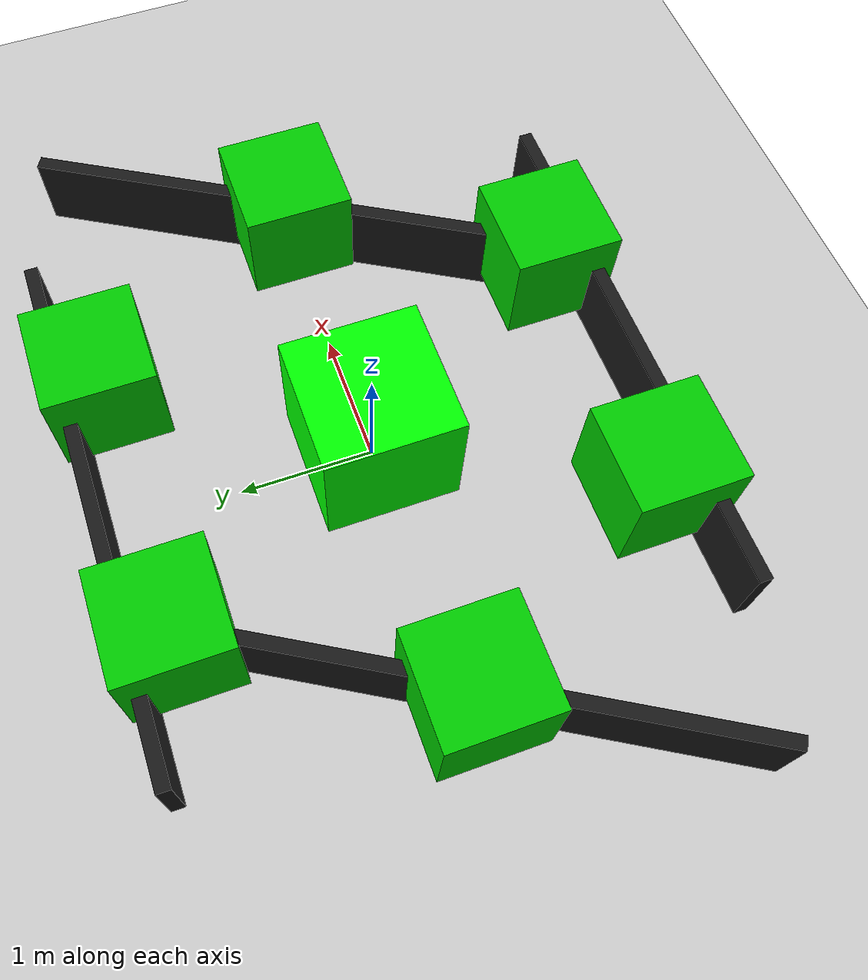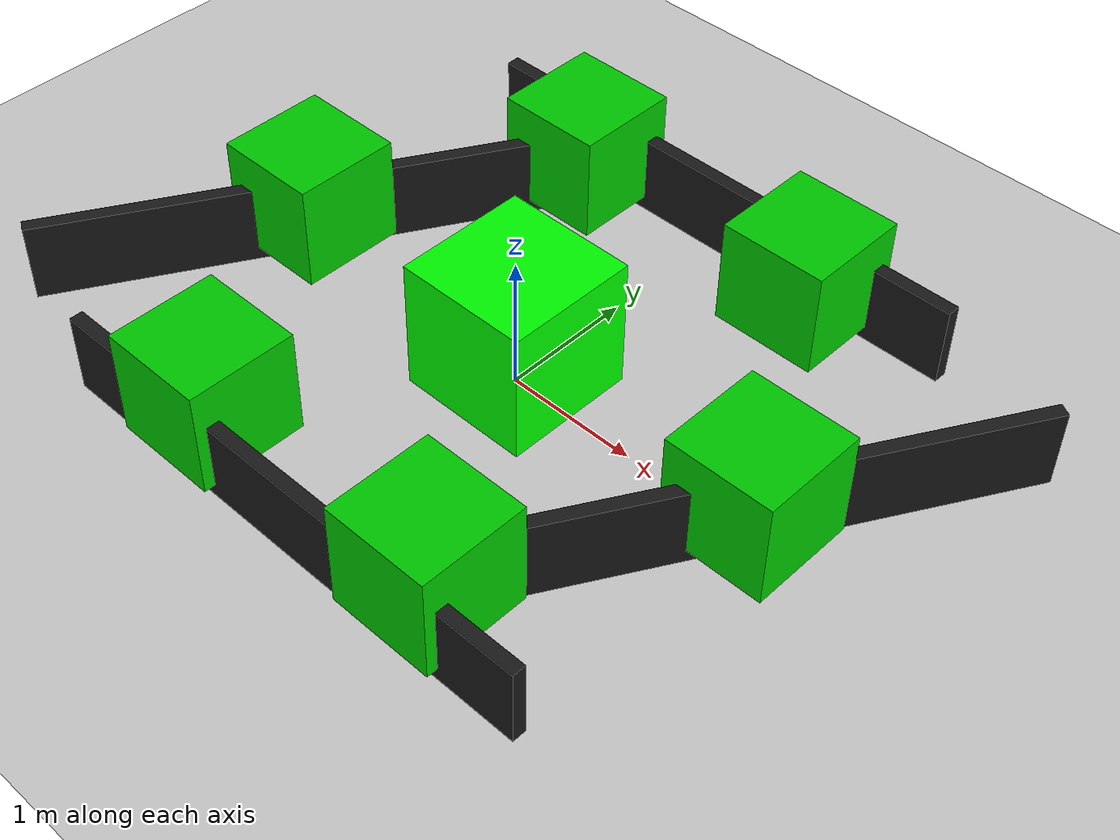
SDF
<!--world模型大体上由我描述，ai生成，后面有一些微调 -->

<?xml version="1.0"?>
<sdf version="1.6">
  <world name="hexagon_world">
    <physics name="default_physics" default="0" type="ode">
      <real_time_update_rate>1000.0</real_time_update_rate>
      <max_step_size>0.001</max_step_size>
      <real_time_factor>1.0</real_time_factor>
    </physics>

    <scene>
      <ambient>0.4 0.4 0.4 1</ambient>
      <background>0.7 0.7 0.7 1</background>
      <shadows>false</shadows>
    </scene>

    <!-- 内置光源 -->
    <light type="directional" name="sun">
      <cast_shadows>false</cast_shadows>
      <pose>0 0 10 0 0 0</pose>
      <diffuse>0.8 0.8 0.8 1</diffuse>
      <specular>0.2 0.2 0.2 1</specular>
      <attenuation>
        <range>1000</range>
        <constant>0.9</constant>
        <linear>0.01</linear>
        <quadratic>0.001</quadratic>
      </attenuation>
      <direction>-0.5 0.1 -0.9</direction>
    </light>

    <!-- 内置地面 -->
    <model name="ground_plane">
      <static>true</static>
      <link name="link">
        <collision name="collision">
          <geometry>
            <plane>
              <normal>0 0 1</normal>
              <size>100 100</size>
            </plane>
          </geometry>
          <surface>
            <friction>
              <ode>
                <mu>100</mu>
                <mu2>50</mu2>
              </ode>
            </friction>
          </surface>
        </collision>
        <visual name="visual">
          <geometry>
            <plane>
              <normal>0 0 1</normal>
              <size>100 100</size>
            </plane>
          </geometry>
          <material>
            <ambient>0.8 0.8 0.8 1</ambient>
            <diffuse>0.8 0.8 0.8 1</diffuse>
            <specular>0.8 0.8 0.8 1</specular>
          </material>
        </visual>
      </link>
    </model>

    <!-- 中心障碍物 -->
    <model name="obstacle_center">
      <pose>0 0 0.5 0 0 0</pose>
      <link name="link">
        <collision name="collision">
          <geometry>
            <box><size>1.0 1.0 1.0</size></box>
          </geometry>
        </collision>
        <visual name="visual">
          <geometry>
            <box><size>1.0 1.0 1.0</size></box>
          </geometry>
          <material>
            <ambient>0.0 1.0 0.0 1</ambient>
            <diffuse>0.0 1.0 0.0 1</diffuse>
          </material>
        </visual>
      </link>
      <static>true</static>
    </model>

    <!-- 左侧障碍物 -->
    <model name="obstacle_left">
      <pose>-2.0 0 0.5 0 0 0</pose>
      <link name="link">
        <collision name="collision">
          <geometry>
            <box><size>0.8 0.8 0.8</size></box>
          </geometry>
        </collision>
        <visual name="visual">
          <geometry>
            <box><size>0.8 0.8 0.8</size></box>
          </geometry>
          <material>
            <ambient>0.0 0.8 0.0 1</ambient>
            <diffuse>0.0 0.8 0.0 1</diffuse>
          </material>
        </visual>
      </link>
      <static>true</static>
    </model>

    <!-- 右侧障碍物 -->
    <model name="obstacle_right">
      <pose>2.0 0 0.5 0 0 0</pose>
      <link name="link">
        <collision name="collision">
          <geometry>
            <box><size>0.8 0.8 0.8</size></box>
          </geometry>
        </collision>
        <visual name="visual">
          <geometry>
            <box><size>0.8 0.8 0.8</size></box>
          </geometry>
          <material>
            <ambient>0.0 0.8 0.0 1</ambient>
            <diffuse>0.0 0.8 0.0 1</diffuse>
          </material>
        </visual>
      </link>
      <static>true</static>
    </model>

    <!-- 左前障碍物 -->
    <model name="obstacle_front_left">
      <pose>-1.0 1.732 0.5 0 0 0</pose>
      <link name="link">
        <collision name="collision">
          <geometry>
            <box><size>0.8 0.8 0.8</size></box>
          </geometry>
        </collision>
        <visual name="visual">
          <geometry>
            <box><size>0.8 0.8 0.8</size></box>
          </geometry>
          <material>
            <ambient>0.0 0.8 0.0 1</ambient>
            <diffuse>0.0 0.8 0.0 1</diffuse>
          </material>
        </visual>
      </link>
      <static>true</static>
    </model>

    <!-- 右前障碍物 -->
    <model name="obstacle_front_right">
      <pose>1.0 1.732 0.5 0 0 0</pose>
      <link name="link">
        <collision name="collision">
          <geometry>
            <box><size>0.8 0.8 0.8</size></box>
          </geometry>
        </collision>
        <visual name="visual">
          <geometry>
            <box><size>0.8 0.8 0.8</size></box>
          </geometry>
          <material>
            <ambient>0.0 0.8 0.0 1</ambient>
            <diffuse>0.0 0.8 0.0 1</diffuse>
          </material>
        </visual>
      </link>
      <static>true</static>
    </model>

    <!-- 左后障碍物 -->
    <model name="obstacle_back_left">
      <pose>-1.0 -1.732 0.5 0 0 0</pose>
      <link name="link">
        <collision name="collision">
          <geometry>
            <box><size>0.8 0.8 0.8</size></box>
          </geometry>
        </collision>
        <visual name="visual">
          <geometry>
            <box><size>0.8 0.8 0.8</size></box>
          </geometry>
          <material>
            <ambient>0.0 0.8 0.0 1</ambient>
            <diffuse>0.0 0.8 0.0 1</diffuse>
          </material>
        </visual>
      </link>
      <static>true</static>
    </model>

    <!-- 右后障碍物 -->
    <model name="obstacle_back_right">
      <pose>1.0 -1.732 0.5 0 0 0</pose>
      <link name="link">
        <collision name="collision">
          <geometry>
            <box><size>0.8 0.8 0.8</size></box>
          </geometry>
        </collision>
        <visual name="visual">
          <geometry>
            <box><size>0.8 0.8 0.8</size></box>
          </geometry>
          <material>
            <ambient>0.0 0.8 0.0 1</ambient>
            <diffuse>0.0 0.8 0.0 1</diffuse>
          </material>
        </visual>
      </link>
      <static>true</static>
    </model>

    <!-- 边界墙 -->
    <model name="wall_1">
      <pose>0 2.0 0.3 0 0 0</pose>
      <link name="link">
        <collision name="collision">
          <geometry>
            <box><size>4.0 0.1 0.6</size></box>
          </geometry>
        </collision>
        <visual name="visual">
          <geometry>
            <box><size>4.0 0.1 0.6</size></box>
          </geometry>
          <material>
            <ambient>0.1 0.1 0.1 1</ambient>
            <diffuse>0.1 0.1 0.1 1</diffuse>
          </material>
        </visual>
      </link>
      <static>true</static>
    </model>

    <model name="wall_2">
      <pose>0 -2.0 0.3 0 0 0</pose>
      <link name="link">
        <collision name="collision">
          <geometry>
            <box><size>4.0 0.1 0.6</size></box>
          </geometry>
        </collision>
        <visual name="visual">
          <geometry>
            <box><size>4.0 0.1 0.6</size></box>
          </geometry>
          <material>
            <ambient>0.1 0.1 0.1 1</ambient>
            <diffuse>0.1 0.1 0.1 1</diffuse>
          </material>
        </visual>
      </link>
      <static>true</static>
    </model>

    <model name="wall_3">
      <pose>2.0 0 0.3 0 0 1.047</pose>
      <link name="link">
        <collision name="collision">
          <geometry>
            <box><size>4.0 0.1 0.6</size></box>
          </geometry>
        </collision>
        <visual name="visual">
          <geometry>
            <box><size>4.0 0.1 0.6</size></box>
          </geometry>
          <material>
            <ambient>0.1 0.1 0.1 1</ambient>
            <diffuse>0.1 0.1 0.1 1</diffuse>
          </material>
        </visual>
      </link>
      <static>true</static>
    </model>

    <model name="wall_4">
      <pose>-2.0 0 0.3 0 0 1.047</pose>
      <link name="link">
        <collision name="collision">
          <geometry>
            <box><size>4.0 0.1 0.6</size></box>
          </geometry>
        </collision>
        <visual name="visual">
          <geometry>
            <box><size>4.0 0.1 0.6</size></box>
          </geometry>
          <material>
            <ambient>0.1 0.1 0.1 1</ambient>
            <diffuse>0.1 0.1 0.1 1</diffuse>
          </material>
        </visual>
      </link>
      <static>true</static>
    </model>

  </world>
</sdf>
